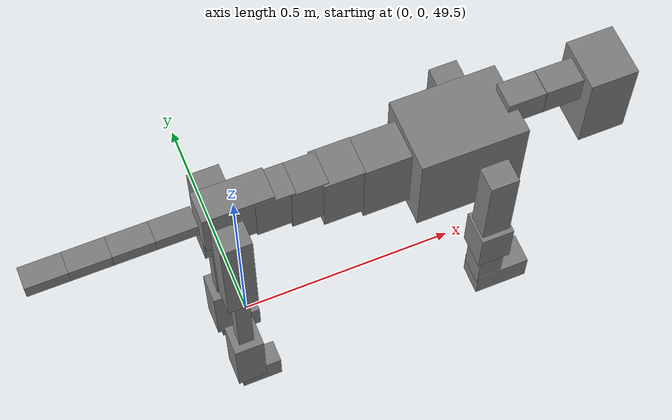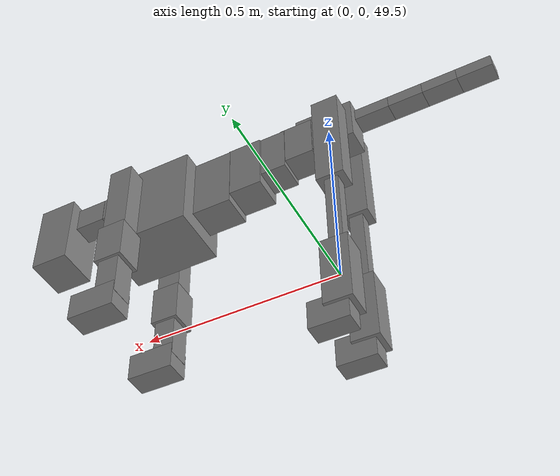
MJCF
<mujoco model="dog">

    <default>
        <joint armature="0.02" stiffness="1" damping="0.2" limited="true"/>
        <geom condim="3" friction="1 0.05 0.05" margin="0.01"/>
        <motor ctrllimited="true" ctrlrange="-1.0 1.0" forcelimited="true" gear="50"/>
    </default>

    <compiler inertiafromgeom="true" angle="radian"/>

    <option timestep="0.016" iterations="50" tolerance="1e-10" solver="Newton" jacobian="dense" cone="pyramidal"/>

    <size nconmax="20000" njmax="60000" nstack="5000000"/>
    <visual>
        <map force="0.1" zfar="30"/>
        <rgba haze="0.15 0.25 0.35 1"/>
        <quality shadowsize="2048"/>
        <global offwidth="800" offheight="800"/>
    </visual>

    <asset>
        <texture type="skybox" builtin="gradient" rgb1="0.3 0.5 0.7" rgb2="0 0 0" width="512" height="512"/>
        <texture name="texplane" type="2d" builtin="checker" rgb1=".2 .3 .4" rgb2=".1 0.15 0.2" width="512" height="512"
                 mark="cross" markrgb=".8 .8 .8"/>
        <texture name="texgeom" type="cube" builtin="flat" mark="cross" width="127" height="1278" rgb1="0.8 0.6 0.4"
                 rgb2="0.8 0.6 0.4" markrgb="1 1 1" random="0.01"/>

        <material name="matplane" reflectance="0.3" texture="texplane" texrepeat="1 1" texuniform="true"/>
        <material name="matgeom" texture="texgeom" texuniform="true" rgba="0.8 0.6 .4 1"/>
    </asset>

    <worldbody>
        <geom name="floor" pos="0 0 0" size="0 0 .25" type="plane" material="matplane" condim="3"/>

        <light directional="false" diffuse=".2 .2 .2" specular="0 0 0" pos="0 0 5" dir="0 0 -1" castshadow="false"/>
        <light mode="targetbodycom" target="torso" directional="false" diffuse=".8 .8 .8" specular="0.3 0.3 0.3"
               pos="0 0 4.0" dir="0 0 -1"/>

        <body name="root" pos="0 0 50">
            <freejoint name="root_1"/>
            <geom type="box" pos="0 0 -0.02" size="0.0774  0.0358  0.063" density="2030"/>

            <body name="spine1" pos="0.054 0 0">
                <joint name="spine1_y" axis="0 1 0" range="0 0.7" limited="true"/>
                <geom type="box" pos="0.02375 0 -0.03" size="0.04375  0.0375  0.05985" density="2030"/>

                <body name="spine2" pos="0.0612 0 0">
                    <joint name="spine2_y" axis="0 1 0" range="-0.15 0.15" limited="true"/>
                    <geom type="box" pos="0.03555  0  -0.04" size="0.04055  0.039  0.06615" density="2030"/>

                    <body name="spine3" pos="0.0730 0 0">
                        <joint name="spine3_y" axis="0 1 0" range="-0.15 0.15" limited="true"/>
                        <geom type="box" pos="0.03555  0  -0.057" size="0.04555  0.0445  0.081" density="2030"/>

                        <body name="spine4" pos="0.0780 0 0">
                            <joint name="spine4_y" axis="0 1 0" range="-0.15 0.15" limited="true"/>
                            <geom type="box" pos="0.05265  0  -0.07" size="0.05265  0.045  0.09135" density="2030"/>

                            <body name="torso" pos="0.1082 0 0">
                                <joint name="torso_y" axis="0 1 0" range="-0.15 0.15" limited="true"/>
                                <geom type="box" pos="0.11925  0  -0.085" size="0.11925  0.085  0.11745"
                                      density="2030"/>

                                <body name="neck1" pos="0.2160  0   0.0180">
                                    <joint name="neck1_y" axis="0 1 0" range="-1.2  -1" limited="true"/>
                                    <geom type="box" pos="0.0423  0  0" size="0.0423  0.03  0.036" density="2325"/>

                                    <body name="neck2" pos="0.0853  0  0">
                                        <joint name="neck2_y" axis="0 1 0" range="0.1  0" limited="true"/>
                                        <geom type="box" pos="0.0423  0  0" size="0.0423  0.03  0.036" density="2325"/>

                                        <body name="head" pos="0.0853  0  0">
                                            <joint name="head_y" axis="0 1 0" range="-0.3  -0.2" limited="true"/>
                                            <geom type="box" pos="0.0531  0  -0.055" size="0.0531  0.06  0.1044"
                                                  density="4030"/>

                                        </body>
                                    </body>
                                </body>

                                <body name="front_shoulder" pos="0.156  0   -0.0480">
                                    <joint name="front_shoulder_y" axis="0 1 0" range="-1 1.5" limited="true"/>
                                    <geom type="box" pos="0 0.13 -0.0928" size="0.0320  0.0274  0.1195" density="1158"/>
                                    <geom type="box" pos="0 -0.13 -0.0928" size="0.0320  0.0274  0.1195"
                                          density="1158"/>

                                    <body name="front_elbow" pos="0  0  -0.1856">
                                        <joint name="front_elbow_y" axis="0 1 0" range="-2 0" limited="true"/>
                                        <geom type="box" pos="0 0.13 -0.0563" size="0.0374  0.0382  0.0563"
                                              density="1081"/>
                                        <geom type="box" pos="0 -0.13 -0.0563" size="0.0374  0.0382  0.0563"
                                              density="1081"/>

                                        <body name="front_wrist" pos="0  0  -0.1126">
                                            <joint name="front_wrist_y" axis="0 1 0" range="-0.2 0" limited="true"/>
                                            <geom type="box" pos="0 0.13 -0.0487" size="0.0282  0.0313  0.0618"
                                                  density="1664"/>
                                            <geom type="box" pos="0 -0.13 -0.0487" size="0.0282  0.0313  0.0618"
                                                  density="1664"/>

                                            <body name="front_finger_end" pos="0  0  -0.0973">
                                                <joint name="front_finger_y" axis="0 1 0" range="-0.4 1"
                                                       limited="true"/>
                                                <geom type="box" pos="0.0336  0.13  -0.0209"
                                                      size="0.0615  0.0336  0.0359" density="1515"/>
                                                <geom type="box" pos="0.0336  -0.13  -0.0209"
                                                      size="0.0615  0.0336  0.0359" density="1515"/>

                                            </body>

                                        </body>
                                    </body>
                                </body>

                            </body>
                        </body>
                    </body>
                </body>
            </body>

            <body name="back_hip" pos="-0.03 0 -0.018">
                <joint name="back_hip_y" axis="0 1 0" range="-1.5 0.3" limited="true"/>
                <geom type="box" pos="0 0.07 -0.1179" size="0.0348  0.0273  0.1407" density="1154"/>
                <geom type="box" pos="0 -0.07 -0.1179" size="0.0348  0.0273  0.1407" density="1154"/>

                <body name="back_knee" pos="0  0  -0.2359">
                    <joint name="back_knee_y" axis="0 1 0" range="0 2.8" limited="true"/>
                    <geom type="box" pos="0 0.07 -0.1216" size="0.0176  0.0173  0.1371" density="1227"/>
                    <geom type="box" pos="0 -0.07 -0.1216" size="0.0176  0.0173  0.1371" density="1227"/>

                    <body name="back_ankle" pos="0  0  -0.2432">
                        <joint name="back_ankle_y" axis="0 1 0" range="-2.2 0" limited="true"/>
                        <geom type="box" pos="0 0.07 -0.0785" size="0.0344  0.0344  0.0898" density="1284"/>
                        <geom type="box" pos="0 -0.07 -0.0785" size="0.0344  0.0344  0.0898" density="1284"/>

                        <body name="back_toe_end" pos="0  0  -0.1571">
                            <joint name="back_toe_y" axis="0 1 0" range="-0.4 1" limited="true"/>
                            <geom type="box" pos="0.0262  0.07  -0.0211" size="0.0480  0.0262  0.0361" density="1515"/>
                            <geom type="box" pos="0.0262  -0.07  -0.0211" size="0.0480  0.0262  0.0361" density="1515"/>

                        </body>
                    </body>
                </body>
            </body>

            <body name="tail1" pos="-0.074 0 -0.006">
                <joint name="tail1_y" axis="0 1 0" range="-0.2 0.2" limited="true"/>
                <geom type="box" pos="-0.0536  0  0" size="0.045  0.025  0.0175" density="1587"/>

                <body name="tail2" pos="-0.09 0 0">
                    <joint name="tail2_y" axis="0 1 0" range="-0.2 0.2" limited="true"/>
                    <geom type="box" pos="-0.0536  0  0" size="0.045  0.025  0.0175" density="1587"/>

                    <body name="tail3" pos="-0.09 0 0">
                        <joint name="tail3_y" axis="0 1 0" range="-0.2 0.2" limited="true"/>
                        <geom type="box" pos="-0.0536  0  0" size="0.045  0.025  0.0175" density="1587"/>

                        <body name="tail4" pos="-0.09 0 0">
                            <joint name="tail4_y" axis="0 1 0" range="-0.2 0.2" limited="true"/>
                            <geom type="box" pos="-0.0536  0  0" size="0.045  0.025  0.0175" density="1587"/>

                        </body>
                    </body>
                </body>
            </body>
        </body>
    </worldbody>

    <actuator>
        <motor joint="spine1_y" forcerange="-150 150     "/>
        <motor joint="spine2_y" forcerange="-150 150     "/>
        <motor joint="spine3_y" forcerange="-150 150     "/>
        <motor joint="spine4_y" forcerange="-150 150     "/>
        <motor joint="torso_y" forcerange="-150 150     "/>
        <motor joint="neck1_y" forcerange="-100 100       "/>
        <motor joint="neck2_y" forcerange="-100 100       "/>
        <motor joint="head_y" forcerange="-150 150       "/>
        <motor joint="front_shoulder_y" forcerange="-117.62 164.98"/>
        <motor joint="front_elbow_y" forcerange="-180.32 197.70"/>
        <motor joint="front_wrist_y" forcerange="-137.66 112.64"/>
        <motor joint="front_finger_y" forcerange="-63.08 75.95"/>
        <motor joint="back_hip_y" forcerange="-354.64 209.23"/>
        <motor joint="back_knee_y" forcerange="-201.45 250.79"/>
        <motor joint="back_angle_y" forcerange="-236.39 213.38"/>
        <motor joint="back_toe_y" forcerange="-107.81 21.80"/>
        <motor joint="tail1_y" forcerange="-50 50     "/>
        <motor joint="tail2_y" forcerange="-50 50     "/>
        <motor joint="tail3_y" forcerange="-50 50     "/>
        <motor joint="tail4_y" forcerange="-50 50     "/>
    </actuator>
</mujoco>
